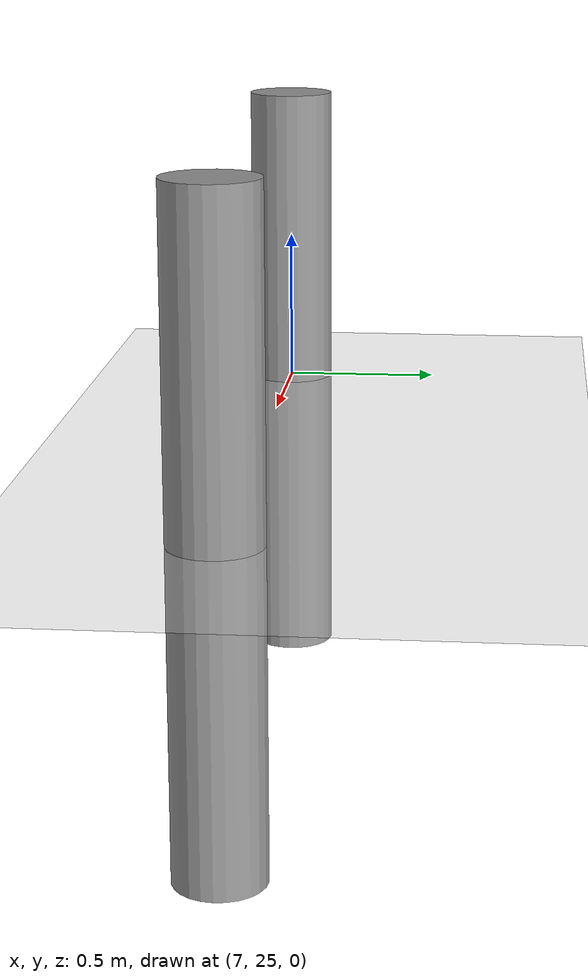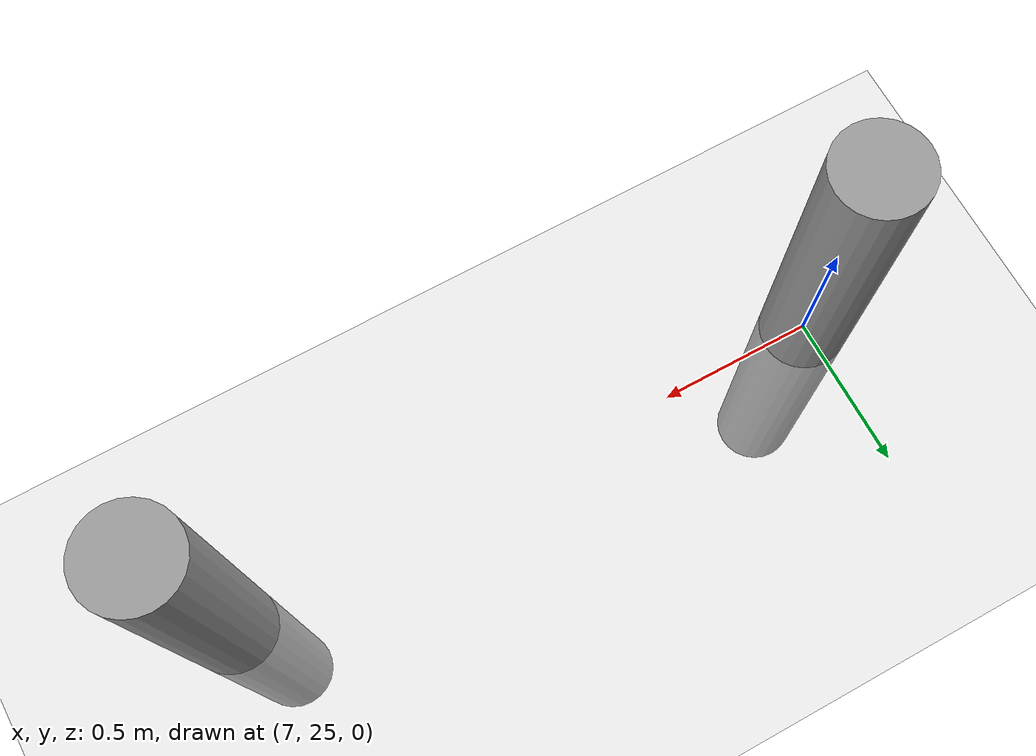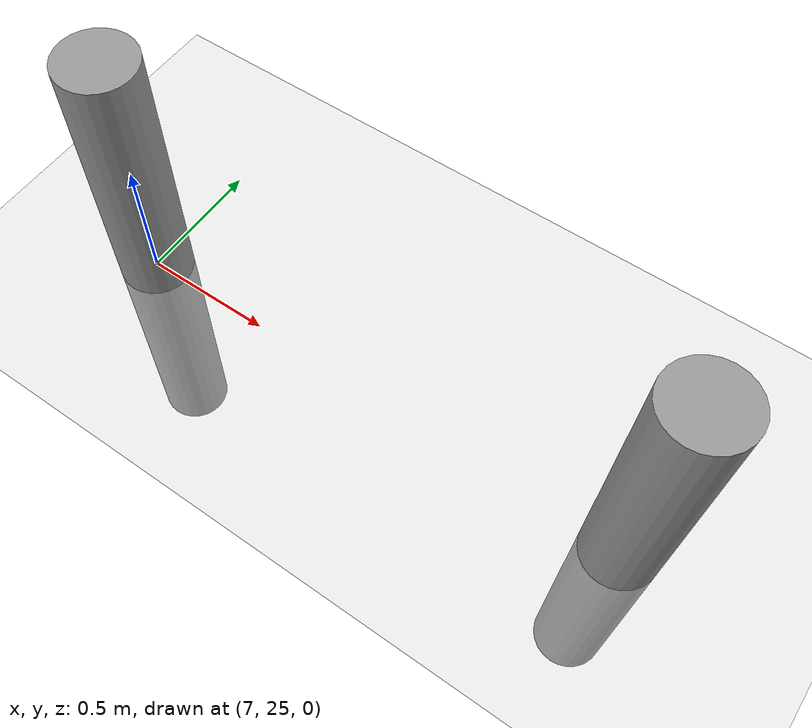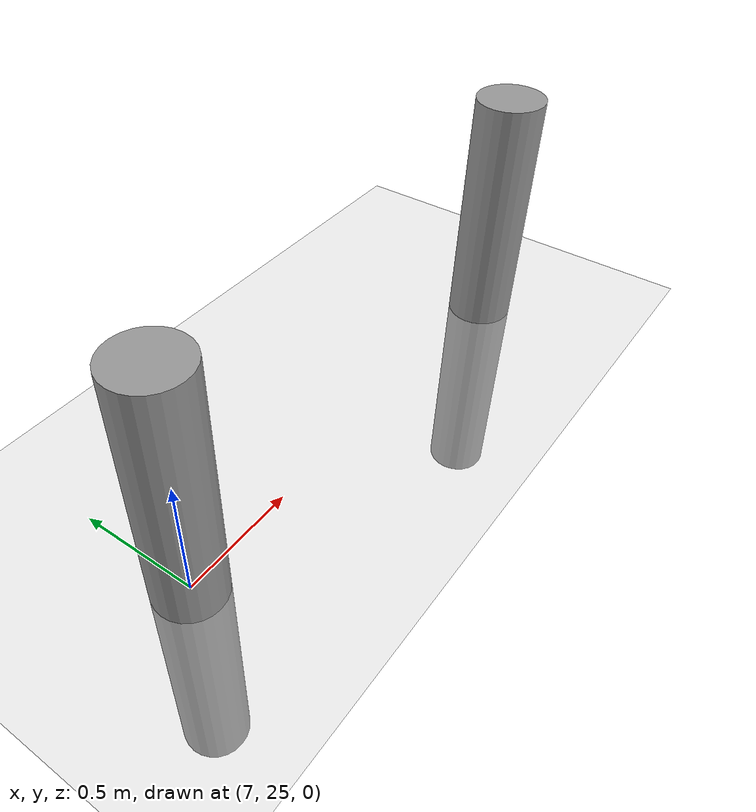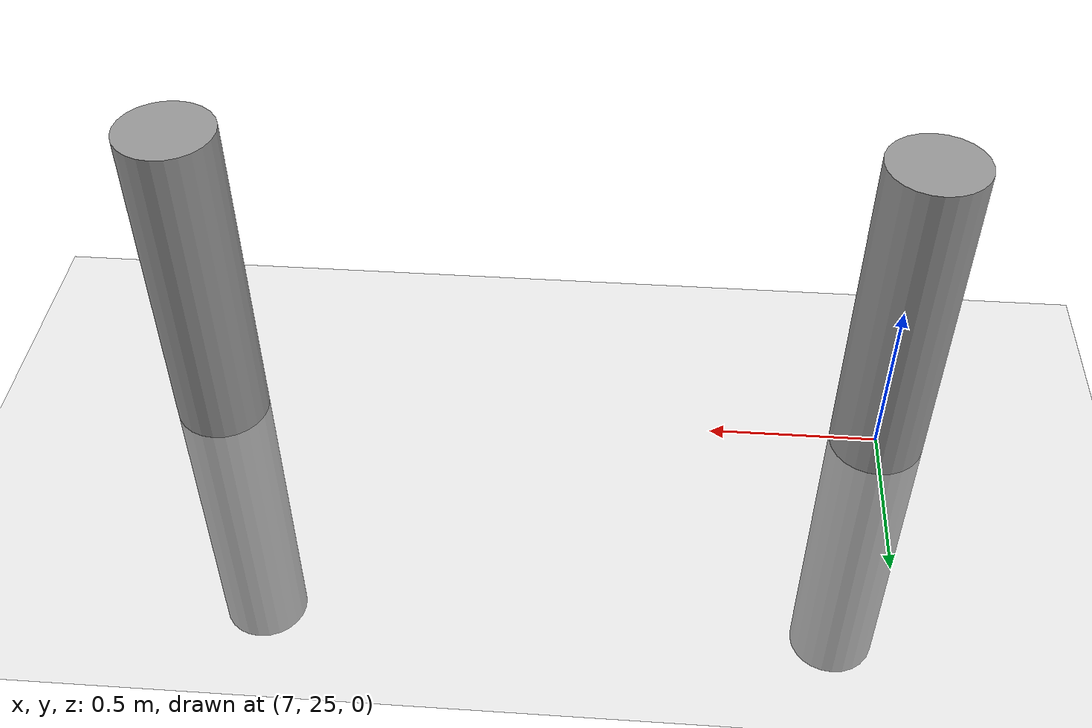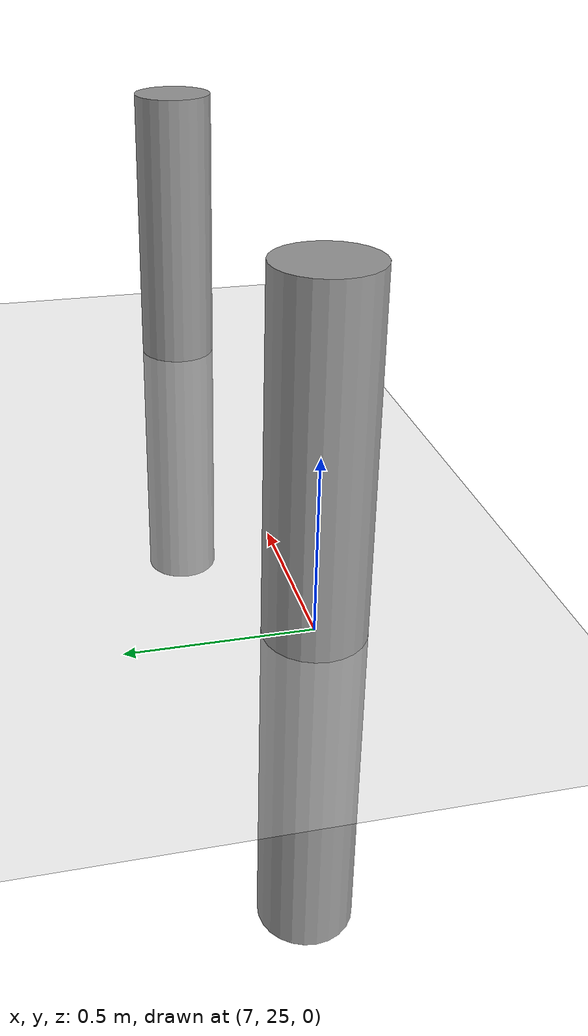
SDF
<sdf version="1.6">
 <world name="default">
  <model name="ground_plane">
   <static>1</static>
   <link name="link">
    <collision name="collision">
     <geometry><plane><normal>0 0 1</normal><size>100 100</size></plane></geometry>
     <surface><friction><ode><mu>100</mu><mu2>50</mu2></ode></friction></surface>
    </collision>
    <visual name="visual">
     <cast_shadows>0</cast_shadows>
     <geometry><plane><normal>0 0 1</normal><size>100 100</size></plane></geometry>
     <material>
      <script><uri>file://media/materials/scripts/gazebo.material</uri><name>Gazebo/Grey</name></script>
     </material>
    </visual>
   </link>
  </model>
  <model name="my_cylinder014_clone_28_0">
   <pose>9 25 0 0 -0 0</pose>
   <link name="my_cylinder014::link">
    <inertial>
     <mass>1</mass>
     <inertia><ixx>0.145833</ixx><ixy>0</ixy><ixz>0</ixz><iyy>0.145833</iyy><iyz>0</iyz><izz>0.125</izz></inertia>
    </inertial>
    <visual name="visual">
     <geometry><cylinder><radius>0.14</radius><length>2</length></cylinder></geometry>
     <material>
      <script><name>Gazebo/Grey</name><uri>file://media/materials/scripts/gazebo.material</uri></script>
      <ambient>0.3 0.3 0.3 1</ambient>
      <diffuse>0.7 0.7 0.7 1</diffuse>
      <specular>1 0.01 0.01 1</specular>
      <emissive>0 0 0 1</emissive>
      <shader type="vertex"><normal_map>__default__</normal_map></shader>
     </material>
    </visual>
    <collision name="collision">
     <geometry><cylinder><radius>0.14</radius><length>2</length></cylinder></geometry>
     <surface>
      <friction>
       <ode><mu>1</mu><mu2>1</mu2><fdir1>0 0 0</fdir1><slip1>0</slip1><slip2>0</slip2></ode>
       <torsional>
        <coefficient>1</coefficient>
        <patch_radius>0</patch_radius>
        <surface_radius>0</surface_radius>
        <use_patch_radius>1</use_patch_radius>
        <ode><slip>0</slip></ode>
       </torsional>
      </friction>
      <bounce><restitution_coefficient>0</restitution_coefficient><threshold>1e+06</threshold></bounce>
      <contact>
       <collide_without_contact>0</collide_without_contact>
       <collide_without_contact_bitmask>1</collide_without_contact_bitmask>
       <collide_bitmask>1</collide_bitmask>
       <ode>
        <soft_cfm>0</soft_cfm>
        <soft_erp>0.2</soft_erp>
        <kp>1e+13</kp>
        <kd>1</kd>
        <max_vel>0.01</max_vel>
        <min_depth>0</min_depth>
       </ode>
       <bullet>
        <split_impulse>1</split_impulse>
        <split_impulse_penetration_threshold>-0.01</split_impulse_penetration_threshold>
        <soft_cfm>0</soft_cfm>
        <soft_erp>0.2</soft_erp>
        <kp>1e+13</kp>
        <kd>1</kd>
       </bullet>
      </contact>
     </surface>
    </collision>
   </link>
   <static>1</static>
  </model>
  <model name="my_cylinder014_clone_28_0">
   <pose>9 25 0 0 -0 0</pose>
   <link name="my_cylinder014::link">
    <inertial>
     <mass>1</mass>
     <inertia><ixx>0.145833</ixx><ixy>0</ixy><ixz>0</ixz><iyy>0.145833</iyy><iyz>0</iyz><izz>0.125</izz></inertia>
    </inertial>
    <visual name="visual">
     <geometry><cylinder><radius>0.14</radius><length>2</length></cylinder></geometry>
     <material>
      <script><name>Gazebo/Grey</name><uri>file://media/materials/scripts/gazebo.material</uri></script>
      <ambient>0.3 0.3 0.3 1</ambient>
      <diffuse>0.7 0.7 0.7 1</diffuse>
      <specular>1 0.01 0.01 1</specular>
      <emissive>0 0 0 1</emissive>
      <shader type="vertex"><normal_map>__default__</normal_map></shader>
     </material>
    </visual>
    <collision name="collision">
     <geometry><cylinder><radius>0.14</radius><length>2</length></cylinder></geometry>
     <surface>
      <friction>
       <ode><mu>1</mu><mu2>1</mu2><fdir1>0 0 0</fdir1><slip1>0</slip1><slip2>0</slip2></ode>
       <torsional>
        <coefficient>1</coefficient>
        <patch_radius>0</patch_radius>
        <surface_radius>0</surface_radius>
        <use_patch_radius>1</use_patch_radius>
        <ode><slip>0</slip></ode>
       </torsional>
      </friction>
      <bounce><restitution_coefficient>0</restitution_coefficient><threshold>1e+06</threshold></bounce>
      <contact>
       <collide_without_contact>0</collide_without_contact>
       <collide_without_contact_bitmask>1</collide_without_contact_bitmask>
       <collide_bitmask>1</collide_bitmask>
       <ode>
        <soft_cfm>0</soft_cfm>
        <soft_erp>0.2</soft_erp>
        <kp>1e+13</kp>
        <kd>1</kd>
        <max_vel>0.01</max_vel>
        <min_depth>0</min_depth>
       </ode>
       <bullet>
        <split_impulse>1</split_impulse>
        <split_impulse_penetration_threshold>-0.01</split_impulse_penetration_threshold>
        <soft_cfm>0</soft_cfm>
        <soft_erp>0.2</soft_erp>
        <kp>1e+13</kp>
        <kd>1</kd>
       </bullet>
      </contact>
     </surface>
    </collision>
   </link>
   <static>1</static>
  </model>
  <model name="my_cylinder014_clone_27_1">
   <pose>7 25 0 0 -0 0</pose>
   <link name="my_cylinder014::link">
    <inertial>
     <mass>1</mass>
     <inertia><ixx>0.145833</ixx><ixy>0</ixy><ixz>0</ixz><iyy>0.145833</iyy><iyz>0</iyz><izz>0.125</izz></inertia>
    </inertial>
    <visual name="visual">
     <geometry><cylinder><radius>0.14</radius><length>2</length></cylinder></geometry>
     <material>
      <script><name>Gazebo/Grey</name><uri>file://media/materials/scripts/gazebo.material</uri></script>
      <ambient>0.3 0.3 0.3 1</ambient>
      <diffuse>0.7 0.7 0.7 1</diffuse>
      <specular>1 0.01 0.01 1</specular>
      <emissive>0 0 0 1</emissive>
      <shader type="vertex"><normal_map>__default__</normal_map></shader>
     </material>
    </visual>
    <collision name="collision">
     <geometry><cylinder><radius>0.14</radius><length>2</length></cylinder></geometry>
     <surface>
      <friction>
       <ode><mu>1</mu><mu2>1</mu2><fdir1>0 0 0</fdir1><slip1>0</slip1><slip2>0</slip2></ode>
       <torsional>
        <coefficient>1</coefficient>
        <patch_radius>0</patch_radius>
        <surface_radius>0</surface_radius>
        <use_patch_radius>1</use_patch_radius>
        <ode><slip>0</slip></ode>
       </torsional>
      </friction>
      <bounce><restitution_coefficient>0</restitution_coefficient><threshold>1e+06</threshold></bounce>
      <contact>
       <collide_without_contact>0</collide_without_contact>
       <collide_without_contact_bitmask>1</collide_without_contact_bitmask>
       <collide_bitmask>1</collide_bitmask>
       <ode>
        <soft_cfm>0</soft_cfm>
        <soft_erp>0.2</soft_erp>
        <kp>1e+13</kp>
        <kd>1</kd>
        <max_vel>0.01</max_vel>
        <min_depth>0</min_depth>
       </ode>
       <bullet>
        <split_impulse>1</split_impulse>
        <split_impulse_penetration_threshold>-0.01</split_impulse_penetration_threshold>
        <soft_cfm>0</soft_cfm>
        <soft_erp>0.2</soft_erp>
        <kp>1e+13</kp>
        <kd>1</kd>
       </bullet>
      </contact>
     </surface>
    </collision>
   </link>
   <static>1</static>
  </model>
 </world>
</sdf>
